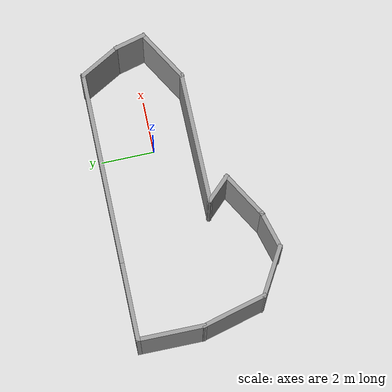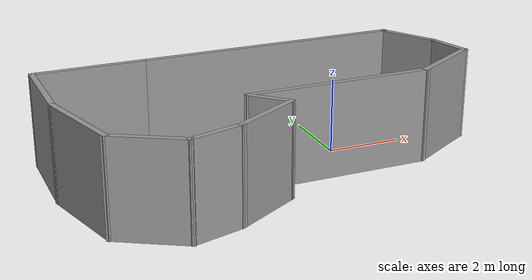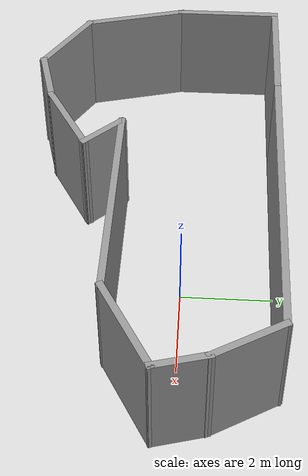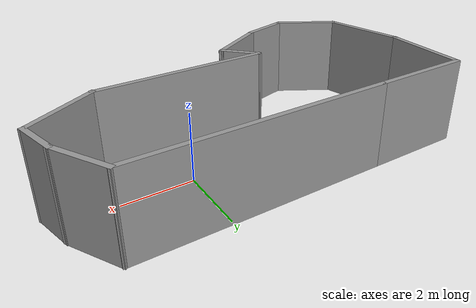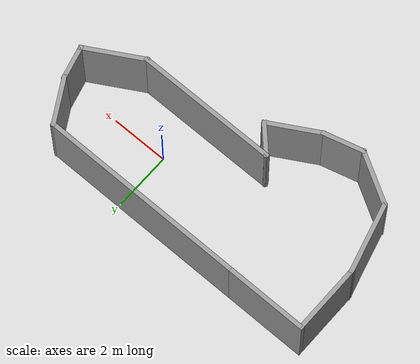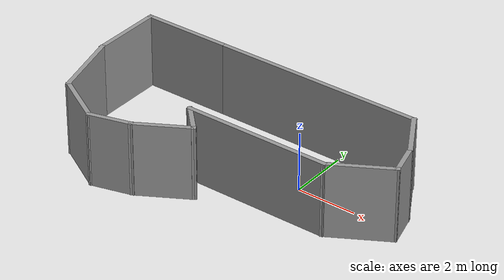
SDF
<sdf version='1.7'>
  <world name='default'>

    <model name='track1'>
      <pose>-1.80685 -0.73449 0 0 -0 0</pose>
      <link name='Wall_10'>
        <collision name='Wall_10_Collision'>
          <geometry>
            <box>
              <size>2.5 0.15 2.5</size>
            </box>
          </geometry>
          <pose>0 0 1.25 0 -0 0</pose>
        </collision>
        <visual name='Wall_10_Visual'>
          <pose>0 0 1.25 0 -0 0</pose>
          <geometry>
            <box>
              <size>2.5 0.15 2.5</size>
            </box>
          </geometry>
          <material>
            <script>
              <uri>file://media/materials/scripts/gazebo.material</uri>
              <name>Gazebo/Grey</name>
            </script>
            <ambient>1 1 1 1</ambient>
          </material>
          <meta>
            <layer>0</layer>
          </meta>
        </visual>
        <pose>-5.21854 -0.7125 0 0 -0 -1.309</pose>
      </link>
      <link name='Wall_11'>
        <collision name='Wall_11_Collision'>
          <geometry>
            <box>
              <size>2 0.15 2.5</size>
            </box>
          </geometry>
          <pose>0 0 1.25 0 -0 0</pose>
        </collision>
        <visual name='Wall_11_Visual'>
          <pose>0 0 1.25 0 -0 0</pose>
          <geometry>
            <box>
              <size>2 0.15 2.5</size>
            </box>
          </geometry>
          <material>
            <script>
              <uri>file://media/materials/scripts/gazebo.material</uri>
              <name>Gazebo/Grey</name>
            </script>
            <ambient>1 1 1 1</ambient>
          </material>
          <meta>
            <layer>0</layer>
          </meta>
        </visual>
        <pose>-4.11335 -2.30996 0 0 -0 -0.523599</pose>
      </link>
      <link name='Wall_12'>
        <collision name='Wall_12_Collision'>
          <geometry>
            <box>
              <size>1.5 0.15 2.5</size>
            </box>
          </geometry>
          <pose>0 0 1.25 0 -0 0</pose>
        </collision>
        <visual name='Wall_12_Visual'>
          <pose>0 0 1.25 0 -0 0</pose>
          <geometry>
            <box>
              <size>1.5 0.15 2.5</size>
            </box>
          </geometry>
          <material>
            <script>
              <uri>file://media/materials/scripts/gazebo.material</uri>
              <name>Gazebo/Grey</name>
            </script>
            <ambient>1 1 1 1</ambient>
          </material>
          <meta>
            <layer>0</layer>
          </meta>
        </visual>
        <pose>-2.66028 -2.59776 0 0 -0 0.261799</pose>
      </link>
      <link name='Wall_13'>
        <collision name='Wall_13_Collision'>
          <geometry>
            <box>
              <size>2 0.15 2.5</size>
            </box>
          </geometry>
          <pose>0 0 1.25 0 -0 0</pose>
        </collision>
        <visual name='Wall_13_Visual'>
          <pose>0 0 1.25 0 -0 0</pose>
          <geometry>
            <box>
              <size>2 0.15 2.5</size>
            </box>
          </geometry>
          <material>
            <script>
              <uri>file://media/materials/scripts/gazebo.material</uri>
              <name>Gazebo/Grey</name>
            </script>
            <ambient>1 1 1 1</ambient>
          </material>
          <meta>
            <layer>0</layer>
          </meta>
        </visual>
        <pose>-1.2072 -1.96056 0 0 -0 0.523599</pose>
      </link>
      <link name='Wall_14'>
        <collision name='Wall_14_Collision'>
          <geometry>
            <box>
              <size>1.22692 0.15 2.5</size>
            </box>
          </geometry>
          <pose>0 0 1.25 0 -0 0</pose>
        </collision>
        <visual name='Wall_14_Visual'>
          <pose>0 0 1.25 0 -0 0</pose>
          <geometry>
            <box>
              <size>1.22692 0.15 2.5</size>
            </box>
          </geometry>
          <material>
            <script>
              <uri>file://media/materials/scripts/gazebo.material</uri>
              <name>Gazebo/Grey</name>
            </script>
            <ambient>1 1 1 1</ambient>
          </material>
          <meta>
            <layer>0</layer>
          </meta>
        </visual>
        <pose>-0.781365 -1.11188 0 0 -0 2.34182</pose>
      </link>
      <link name='Wall_3'>
        <collision name='Wall_3_Collision'>
          <geometry>
            <box>
              <size>5 0.15 2.5</size>
            </box>
          </geometry>
          <pose>0 0 1.25 0 -0 0</pose>
        </collision>
        <visual name='Wall_3_Visual'>
          <pose>0 0 1.25 0 -0 0</pose>
          <geometry>
            <box>
              <size>5 0.15 2.5</size>
            </box>
          </geometry>
          <material>
            <script>
              <uri>file://media/materials/scripts/gazebo.material</uri>
              <name>Gazebo/Grey</name>
            </script>
            <ambient>1 1 1 1</ambient>
          </material>
          <meta>
            <layer>0</layer>
          </meta>
        </visual>
        <pose>1.2684 -0.725696 0 0 -0 0</pose>
      </link>
      <link name='Wall_4'>
        <collision name='Wall_4_Collision'>
          <geometry>
            <box>
              <size>2.25 0.15 2.5</size>
            </box>
          </geometry>
          <pose>0 0 1.25 0 -0 0</pose>
        </collision>
        <visual name='Wall_4_Visual'>
          <pose>0 0 1.25 0 -0 0</pose>
          <geometry>
            <box>
              <size>2.25 0.15 2.5</size>
            </box>
          </geometry>
          <material>
            <script>
              <uri>file://media/materials/scripts/gazebo.material</uri>
              <name>Gazebo/Grey</name>
            </script>
            <ambient>1 1 1 1</ambient>
          </material>
          <meta>
            <layer>0</layer>
          </meta>
        </visual>
        <pose>4.60273 -0.200696 0 0 -0 0.523599</pose>
      </link>
      <link name='Wall_5'>
        <collision name='Wall_5_Collision'>
          <geometry>
            <box>
              <size>1.25 0.15 2.5</size>
            </box>
          </geometry>
          <pose>0 0 1.25 0 -0 0</pose>
        </collision>
        <visual name='Wall_5_Visual'>
          <pose>0 0 1.25 0 -0 0</pose>
          <geometry>
            <box>
              <size>1.25 0.15 2.5</size>
            </box>
          </geometry>
          <material>
            <script>
              <uri>file://media/materials/scripts/gazebo.material</uri>
              <name>Gazebo/Grey</name>
            </script>
            <ambient>1 1 1 1</ambient>
          </material>
          <meta>
            <layer>0</layer>
          </meta>
        </visual>
        <pose>5.3697 0.855563 0 0 -0 1.8326</pose>
      </link>
      <link name='Wall_6'>
        <collision name='Wall_6_Collision'>
          <geometry>
            <box>
              <size>1.75 0.15 2.5</size>
            </box>
          </geometry>
          <pose>0 0 1.25 0 -0 0</pose>
        </collision>
        <visual name='Wall_6_Visual'>
          <pose>0 0 1.25 0 -0 0</pose>
          <geometry>
            <box>
              <size>1.75 0.15 2.5</size>
            </box>
          </geometry>
          <material>
            <script>
              <uri>file://media/materials/scripts/gazebo.material</uri>
              <name>Gazebo/Grey</name>
            </script>
            <ambient>1 1 1 1</ambient>
          </material>
          <meta>
            <layer>0</layer>
          </meta>
        </visual>
        <pose>4.82735 2.07964 0 0 -0 2.0944</pose>
      </link>
      <link name='Wall_7'>
        <collision name='Wall_7_Collision'>
          <geometry>
            <box>
              <size>7.25 0.15 2.5</size>
            </box>
          </geometry>
          <pose>0 0 1.25 0 -0 0</pose>
        </collision>
        <visual name='Wall_7_Visual'>
          <pose>0 0 1.25 0 -0 0</pose>
          <geometry>
            <box>
              <size>7.25 0.15 2.5</size>
            </box>
          </geometry>
          <material>
            <script>
              <uri>file://media/materials/scripts/gazebo.material</uri>
              <name>Gazebo/Grey</name>
            </script>
            <ambient>1 1 1 1</ambient>
          </material>
          <meta>
            <layer>0</layer>
          </meta>
        </visual>
        <pose>0.877352 2.77246 0 0 -0 3.14159</pose>
      </link>
      <link name='Wall_8'>
        <collision name='Wall_8_Collision'>
          <geometry>
            <box>
              <size>3 0.15 2.5</size>
            </box>
          </geometry>
          <pose>0 0 1.25 0 -0 0</pose>
        </collision>
        <visual name='Wall_8_Visual'>
          <pose>0 0 1.25 0 -0 0</pose>
          <geometry>
            <box>
              <size>3 0.15 2.5</size>
            </box>
          </geometry>
          <material>
            <script>
              <uri>file://media/materials/scripts/gazebo.material</uri>
              <name>Gazebo/Grey</name>
            </script>
            <ambient>1 1 1 1</ambient>
          </material>
          <meta>
            <layer>0</layer>
          </meta>
        </visual>
        <pose>-4.09765 2.77246 0 0 -0 3.14159</pose>
      </link>
      <link name='Wall_9'>
        <collision name='Wall_9_Collision'>
          <geometry>
            <box>
              <size>2.5 0.15 2.5</size>
            </box>
          </geometry>
          <pose>0 0 1.25 0 -0 0</pose>
        </collision>
        <visual name='Wall_9_Visual'>
          <pose>0 0 1.25 0 -0 0</pose>
          <geometry>
            <box>
              <size>2.5 0.15 2.5</size>
            </box>
          </geometry>
          <material>
            <script>
              <uri>file://media/materials/scripts/gazebo.material</uri>
              <name>Gazebo/Grey</name>
            </script>
            <ambient>1 1 1 1</ambient>
          </material>
          <meta>
            <layer>0</layer>
          </meta>
        </visual>
        <pose>-5.52265 1.59746 0 0 -0 -1.5708</pose>
      </link>
      <static>1</static>
    </model>

  </world>
</sdf>
